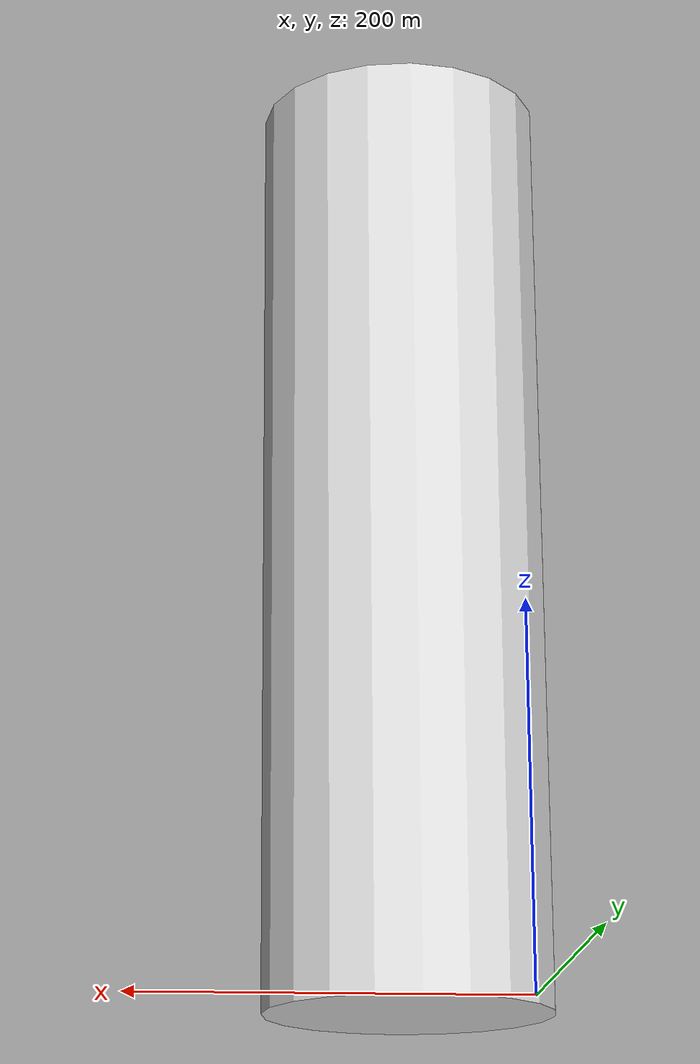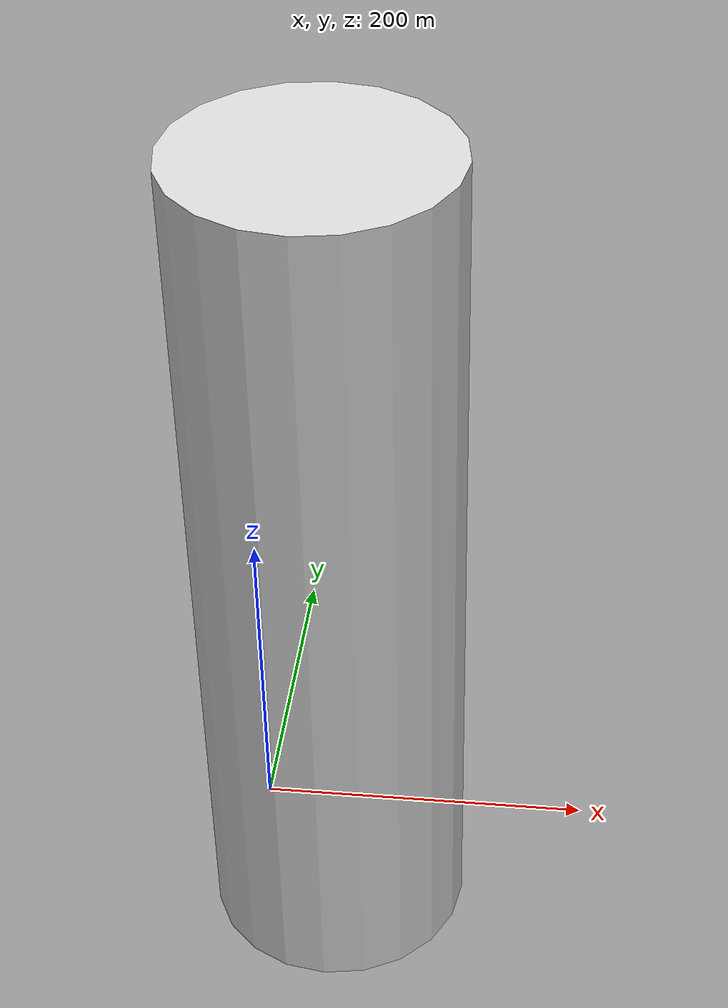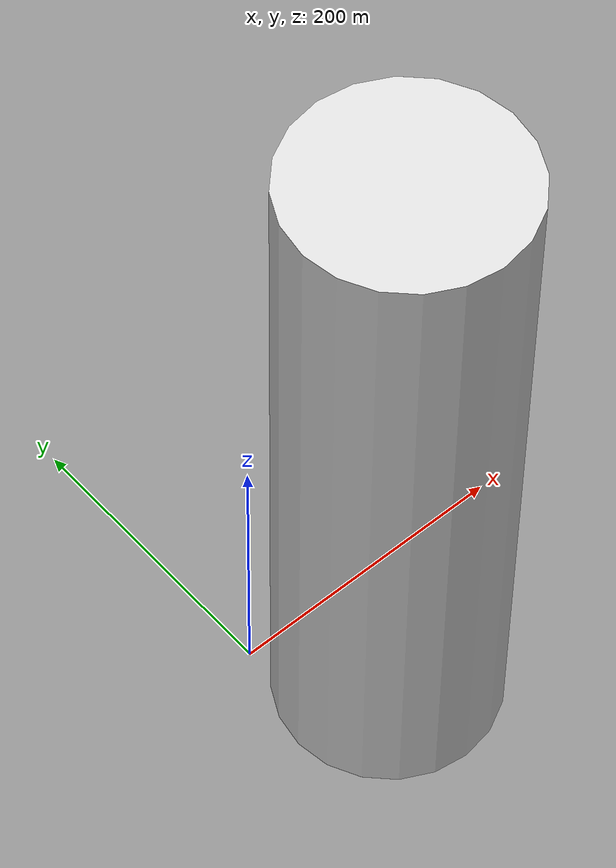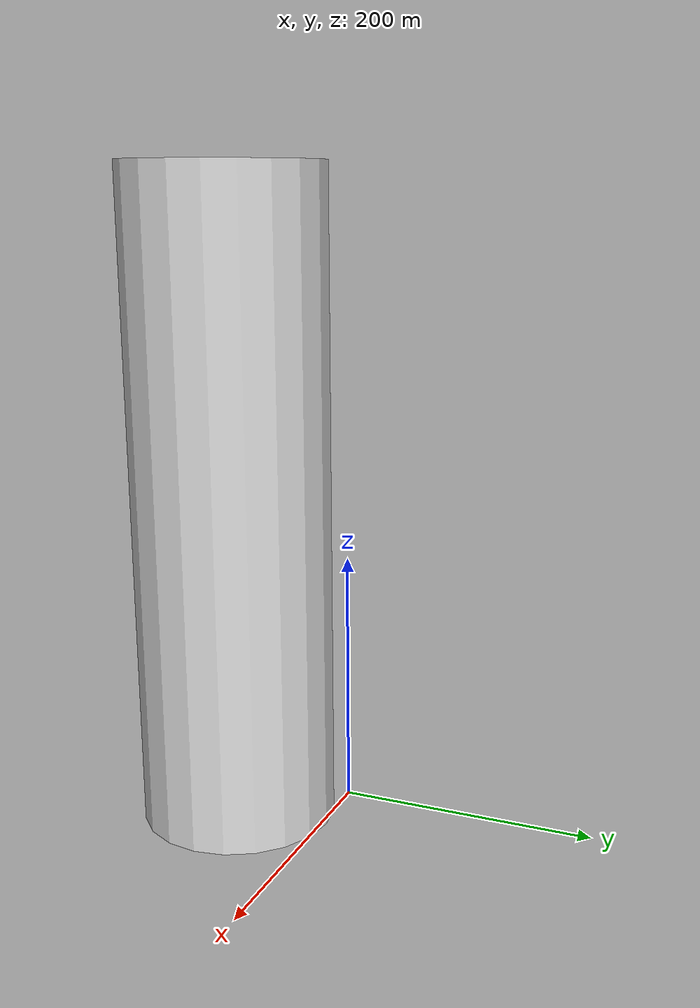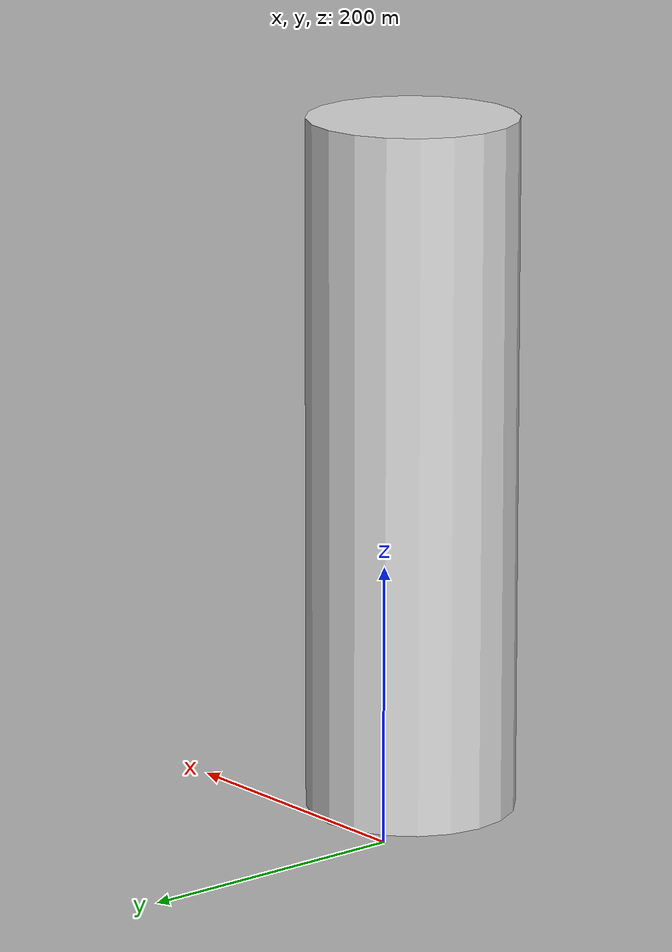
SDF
<?xml version="1.0" ?>
<sdf version="1.6">
  <model name="palo">
    <static>true</static>
    <link name="link">
      <collision name="collision">
        <geometry>
          <mesh>
            <uri>model://palo/meshes/palo.dae</uri>
          </mesh>
        </geometry>
      </collision>
      <visual name="visual">
        <geometry>
          <mesh>
            <uri>model://palo/meshes/palo.dae</uri>
          </mesh>
        </geometry>
      </visual>
    </link>
  </model>
</sdf>
